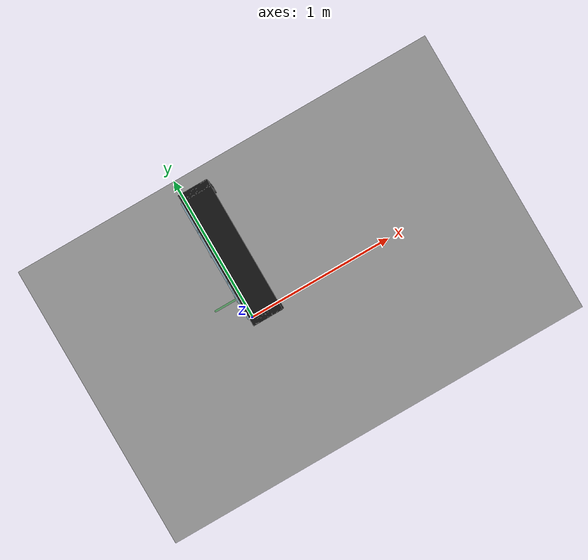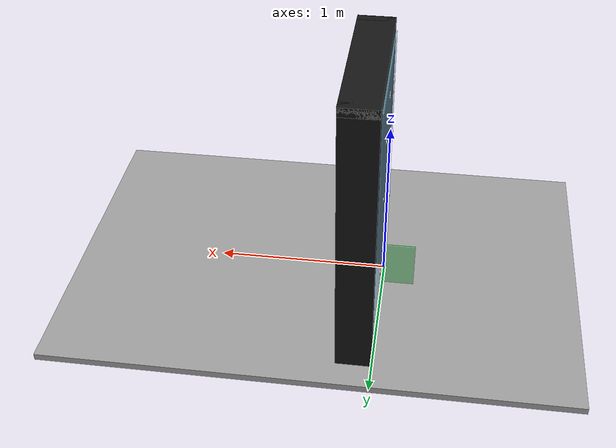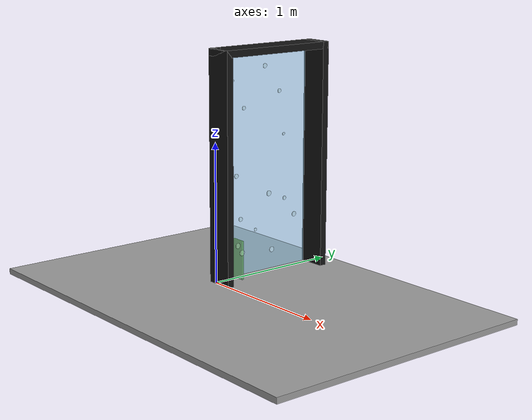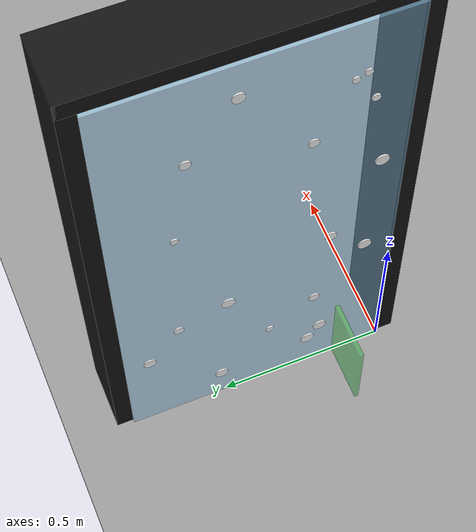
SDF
<sdf version="1.6">
 <world name="window_cleaner_demo">
  <physics name="default_physics" type="ode">
   <max_step_size>0.001</max_step_size>
   <real_time_update_rate>1000</real_time_update_rate>
   <real_time_factor>1.0</real_time_factor>
  </physics>
  <scene>
   <ambient>0.35 0.35 0.35 1</ambient>
   <background>0.78 0.86 0.95 1</background>
   <shadows>true</shadows>
  </scene>
  <include><uri>model://sun</uri></include>
  <plugin name="gazebo_ros_state" filename="libgazebo_ros_state.so">
   <ros><namespace>/gazebo</namespace></ros>
   <update_rate>30.0</update_rate>
  </plugin>
  <model name="traction_test_floor">
   <static>true</static>
   <pose>0.35 0 0 0 0 0</pose>
   <link name="link">
    <collision name="collision">
     <geometry><box><size>3.0 2.0 0.04</size></box></geometry>
     <surface><friction><ode><mu>1.1</mu><mu2>1.1</mu2></ode></friction></surface>
    </collision>
    <visual name="visual">
     <geometry><box><size>3.0 2.0 0.04</size></box></geometry>
     <material><ambient>0.55 0.55 0.55 1</ambient><diffuse>0.62 0.62 0.62 1</diffuse></material>
    </visual>
   </link>
  </model>
  <model name="window_wall">
   <static>true</static>
   <pose>0 0.4 0.8 0 0 0</pose>
   <link name="link">
    <collision name="glass_collision">
     <geometry><box><size>0.02 0.8 1.6</size></box></geometry>
     <surface><friction><ode><mu>0.9</mu><mu2>0.9</mu2></ode></friction></surface>
    </collision>
    <visual name="glass">
     <geometry><box><size>0.02 0.8 1.6</size></box></geometry>
     <material>
      <ambient>0.62 0.86 1.0 0.55</ambient>
      <diffuse>0.62 0.86 1.0 0.55</diffuse>
      <specular>0.7 0.9 1.0 1</specular>
     </material>
    </visual>
    <collision name="frame_top_collision">
     <pose>0.10 0 0.825 0 0 0</pose>
     <geometry><box><size>0.20 0.90 0.05</size></box></geometry>
    </collision>
    <visual name="frame_top">
     <pose>0.10 0 0.825 0 0 0</pose>
     <geometry><box><size>0.20 0.90 0.05</size></box></geometry>
     <material><ambient>0.08 0.08 0.08 1</ambient><diffuse>0.08 0.08 0.08 1</diffuse></material>
    </visual>
    <collision name="frame_bottom_collision">
     <pose>0.10 0 -0.825 0 0 0</pose>
     <geometry><box><size>0.20 0.90 0.05</size></box></geometry>
    </collision>
    <visual name="frame_bottom">
     <pose>0.10 0 -0.825 0 0 0</pose>
     <geometry><box><size>0.20 0.90 0.05</size></box></geometry>
     <material><ambient>0.08 0.08 0.08 1</ambient><diffuse>0.08 0.08 0.08 1</diffuse></material>
    </visual>
    <collision name="frame_left_collision">
     <pose>0.10 -0.425 0 0 0 0</pose>
     <geometry><box><size>0.20 0.05 1.70</size></box></geometry>
    </collision>
    <visual name="frame_left">
     <pose>0.10 -0.425 0 0 0 0</pose>
     <geometry><box><size>0.20 0.05 1.70</size></box></geometry>
     <material><ambient>0.08 0.08 0.08 1</ambient><diffuse>0.08 0.08 0.08 1</diffuse></material>
    </visual>
    <collision name="frame_right_collision">
     <pose>0.10 0.425 0 0 0 0</pose>
     <geometry><box><size>0.20 0.05 1.70</size></box></geometry>
    </collision>
    <visual name="frame_right">
     <pose>0.10 0.425 0 0 0 0</pose>
     <geometry><box><size>0.20 0.05 1.70</size></box></geometry>
     <material><ambient>0.08 0.08 0.08 1</ambient><diffuse>0.08 0.08 0.08 1</diffuse></material>
    </visual>
   </link>
  </model>
  <model name="sim_dirt_dot_00">
   <static>true</static>
   <pose>-0.0140 0.1071 1.3114 0.000000 1.570796 0.000000</pose>
   <link name="link">
    <visual name="visual">
     <geometry><cylinder><radius>0.0120</radius><length>0.004</length></cylinder></geometry>
     <material>
      <ambient>1.0 1.0 1.0 1</ambient>
      <diffuse>1.0 1.0 1.0 1</diffuse>
      <specular>0.2 0.2 0.2 1</specular>
     </material>
    </visual>
   </link>
  </model>
  <model name="sim_dirt_dot_01">
   <static>true</static>
   <pose>-0.0140 0.2067 0.2276 0.000000 1.570796 0.000000</pose>
   <link name="link">
    <visual name="visual">
     <geometry><cylinder><radius>0.0202</radius><length>0.004</length></cylinder></geometry>
     <material>
      <ambient>1.0 1.0 1.0 1</ambient>
      <diffuse>1.0 1.0 1.0 1</diffuse>
      <specular>0.2 0.2 0.2 1</specular>
     </material>
    </visual>
   </link>
  </model>
  <model name="sim_dirt_dot_02">
   <static>true</static>
   <pose>-0.0140 0.4891 0.5689 0.000000 1.570796 0.000000</pose>
   <link name="link">
    <visual name="visual">
     <geometry><cylinder><radius>0.0199</radius><length>0.004</length></cylinder></geometry>
     <material>
      <ambient>1.0 1.0 1.0 1</ambient>
      <diffuse>1.0 1.0 1.0 1</diffuse>
      <specular>0.2 0.2 0.2 1</specular>
     </material>
    </visual>
   </link>
  </model>
  <model name="sim_dirt_dot_03">
   <static>true</static>
   <pose>-0.0140 0.1642 1.4077 0.000000 1.570796 0.000000</pose>
   <link name="link">
    <visual name="visual">
     <geometry><cylinder><radius>0.0105</radius><length>0.004</length></cylinder></geometry>
     <material>
      <ambient>1.0 1.0 1.0 1</ambient>
      <diffuse>1.0 1.0 1.0 1</diffuse>
      <specular>0.2 0.2 0.2 1</specular>
     </material>
    </visual>
   </link>
  </model>
  <model name="sim_dirt_dot_04">
   <static>true</static>
   <pose>-0.0140 0.2305 0.4185 0.000000 1.570796 0.000000</pose>
   <link name="link">
    <visual name="visual">
     <geometry><cylinder><radius>0.0164</radius><length>0.004</length></cylinder></geometry>
     <material>
      <ambient>1.0 1.0 1.0 1</ambient>
      <diffuse>1.0 1.0 1.0 1</diffuse>
      <specular>0.2 0.2 0.2 1</specular>
     </material>
    </visual>
   </link>
  </model>
  <model name="sim_dirt_dot_05">
   <static>true</static>
   <pose>-0.0140 0.1334 1.4220 0.000000 1.570796 0.000000</pose>
   <link name="link">
    <visual name="visual">
     <geometry><cylinder><radius>0.0108</radius><length>0.004</length></cylinder></geometry>
     <material>
      <ambient>1.0 1.0 1.0 1</ambient>
      <diffuse>1.0 1.0 1.0 1</diffuse>
      <specular>0.2 0.2 0.2 1</specular>
     </material>
    </visual>
   </link>
  </model>
  <model name="sim_dirt_dot_06">
   <static>true</static>
   <pose>-0.0140 0.0888 0.6252 0.000000 1.570796 0.000000</pose>
   <link name="link">
    <visual name="visual">
     <geometry><cylinder><radius>0.0198</radius><length>0.004</length></cylinder></geometry>
     <material>
      <ambient>1.0 1.0 1.0 1</ambient>
      <diffuse>1.0 1.0 1.0 1</diffuse>
      <specular>0.2 0.2 0.2 1</specular>
     </material>
    </visual>
   </link>
  </model>
  <model name="sim_dirt_dot_07">
   <static>true</static>
   <pose>-0.0140 0.4486 1.4885 0.000000 1.570796 0.000000</pose>
   <link name="link">
    <visual name="visual">
     <geometry><cylinder><radius>0.0168</radius><length>0.004</length></cylinder></geometry>
     <material>
      <ambient>1.0 1.0 1.0 1</ambient>
      <diffuse>1.0 1.0 1.0 1</diffuse>
      <specular>0.2 0.2 0.2 1</specular>
     </material>
    </visual>
   </link>
  </model>
  <model name="sim_dirt_dot_08">
   <static>true</static>
   <pose>-0.0140 0.7276 0.3784 0.000000 1.570796 0.000000</pose>
   <link name="link">
    <visual name="visual">
     <geometry><cylinder><radius>0.0184</radius><length>0.004</length></cylinder></geometry>
     <material>
      <ambient>1.0 1.0 1.0 1</ambient>
      <diffuse>1.0 1.0 1.0 1</diffuse>
      <specular>0.2 0.2 0.2 1</specular>
     </material>
    </visual>
   </link>
  </model>
  <model name="sim_dirt_dot_09">
   <static>true</static>
   <pose>-0.0140 0.2430 0.1692 0.000000 1.570796 0.000000</pose>
   <link name="link">
    <visual name="visual">
     <geometry><cylinder><radius>0.0212</radius><length>0.004</length></cylinder></geometry>
     <material>
      <ambient>1.0 1.0 1.0 1</ambient>
      <diffuse>1.0 1.0 1.0 1</diffuse>
      <specular>0.2 0.2 0.2 1</specular>
     </material>
    </visual>
   </link>
  </model>
  <model name="sim_dirt_dot_10">
   <static>true</static>
   <pose>-0.0140 0.5172 0.1469 0.000000 1.570796 0.000000</pose>
   <link name="link">
    <visual name="visual">
     <geometry><cylinder><radius>0.0197</radius><length>0.004</length></cylinder></geometry>
     <material>
      <ambient>1.0 1.0 1.0 1</ambient>
      <diffuse>1.0 1.0 1.0 1</diffuse>
      <specular>0.2 0.2 0.2 1</specular>
     </material>
    </visual>
   </link>
  </model>
  <model name="sim_dirt_dot_11">
   <static>true</static>
   <pose>-0.0140 0.1939 0.7353 0.000000 1.570796 0.000000</pose>
   <link name="link">
    <visual name="visual">
     <geometry><cylinder><radius>0.0167</radius><length>0.004</length></cylinder></geometry>
     <material>
      <ambient>1.0 1.0 1.0 1</ambient>
      <diffuse>1.0 1.0 1.0 1</diffuse>
      <specular>0.2 0.2 0.2 1</specular>
     </material>
    </visual>
   </link>
  </model>
  <model name="sim_dirt_dot_12">
   <static>true</static>
   <pose>-0.0140 0.6343 0.5131 0.000000 1.570796 0.000000</pose>
   <link name="link">
    <visual name="visual">
     <geometry><cylinder><radius>0.0147</radius><length>0.004</length></cylinder></geometry>
     <material>
      <ambient>1.0 1.0 1.0 1</ambient>
      <diffuse>1.0 1.0 1.0 1</diffuse>
      <specular>0.2 0.2 0.2 1</specular>
     </material>
    </visual>
   </link>
  </model>
  <model name="sim_dirt_dot_13">
   <static>true</static>
   <pose>-0.0140 0.5810 1.3009 0.000000 1.570796 0.000000</pose>
   <link name="link">
    <visual name="visual">
     <geometry><cylinder><radius>0.0148</radius><length>0.004</length></cylinder></geometry>
     <material>
      <ambient>1.0 1.0 1.0 1</ambient>
      <diffuse>1.0 1.0 1.0 1</diffuse>
      <specular>0.2 0.2 0.2 1</specular>
     </material>
    </visual>
   </link>
  </model>
  <model name="sim_dirt_dot_14">
   <static>true</static>
   <pose>-0.0140 0.6235 0.9865 0.000000 1.570796 0.000000</pose>
   <link name="link">
    <visual name="visual">
     <geometry><cylinder><radius>0.0108</radius><length>0.004</length></cylinder></geometry>
     <material>
      <ambient>1.0 1.0 1.0 1</ambient>
      <diffuse>1.0 1.0 1.0 1</diffuse>
      <specular>0.2 0.2 0.2 1</specular>
     </material>
    </visual>
   </link>
  </model>
  <model name="sim_dirt_dot_15">
   <static>true</static>
   <pose>-0.0140 0.3652 0.3210 0.000000 1.570796 0.000000</pose>
   <link name="link">
    <visual name="visual">
     <geometry><cylinder><radius>0.0121</radius><length>0.004</length></cylinder></geometry>
     <material>
      <ambient>1.0 1.0 1.0 1</ambient>
      <diffuse>1.0 1.0 1.0 1</diffuse>
      <specular>0.2 0.2 0.2 1</specular>
     </material>
    </visual>
   </link>
  </model>
  <model name="sim_dirt_dot_16">
   <static>true</static>
   <pose>-0.0140 0.0686 1.0280 0.000000 1.570796 0.000000</pose>
   <link name="link">
    <visual name="visual">
     <geometry><cylinder><radius>0.0197</radius><length>0.004</length></cylinder></geometry>
     <material>
      <ambient>1.0 1.0 1.0 1</ambient>
      <diffuse>1.0 1.0 1.0 1</diffuse>
      <specular>0.2 0.2 0.2 1</specular>
     </material>
    </visual>
   </link>
  </model>
  <model name="sim_dirt_dot_17">
   <static>true</static>
   <pose>-0.0140 0.2602 1.2099 0.000000 1.570796 0.000000</pose>
   <link name="link">
    <visual name="visual">
     <geometry><cylinder><radius>0.0142</radius><length>0.004</length></cylinder></geometry>
     <material>
      <ambient>1.0 1.0 1.0 1</ambient>
      <diffuse>1.0 1.0 1.0 1</diffuse>
      <specular>0.2 0.2 0.2 1</specular>
     </material>
    </visual>
   </link>
  </model>
  <model name="robot_start_marker">
   <static>true</static>
   <pose>-0.035 0.15 0.15 0 0 1.570796</pose>
   <link name="link">
    <visual name="body_outline">
     <geometry><box><size>0.012 0.30 0.30</size></box></geometry>
     <material><ambient>0.1 0.7 0.2 0.45</ambient><diffuse>0.1 0.7 0.2 0.45</diffuse></material>
    </visual>
   </link>
  </model>
  <model name="sim_camera">
   <static>true</static>
   <pose>-2.4 0.4 0.8 0 0 0</pose>
   <link name="camera_link">
    <sensor name="camera" type="camera">
     <always_on>true</always_on>
     <update_rate>10</update_rate>
     <camera>
      <horizontal_fov>1.047</horizontal_fov>
      <image><width>640</width><height>480</height><format>R8G8B8</format></image>
      <clip><near>0.05</near><far>10</far></clip>
     </camera>
     <plugin name="camera_controller" filename="libgazebo_ros_camera.so">
      <ros>
       <namespace>/</namespace>
       <remapping>image_raw:=/world_camera/image_raw</remapping>
       <remapping>camera_info:=/world_camera/camera_info</remapping>
      </ros>
      <camera_name>world_camera</camera_name>
      <frame_name>camera_link</frame_name>
     </plugin>
    </sensor>
   </link>
  </model>
 </world>
</sdf>
